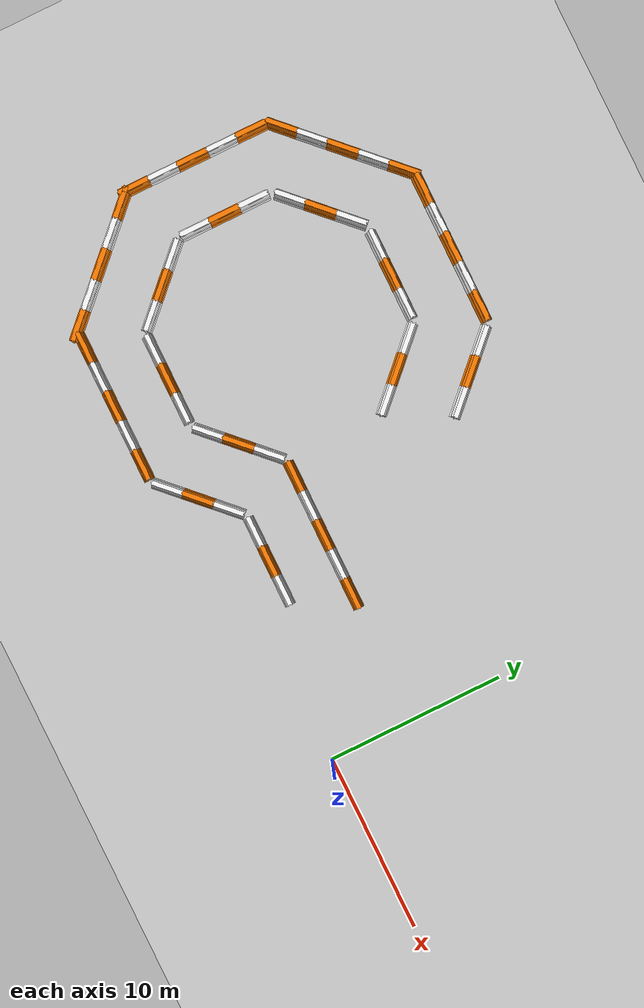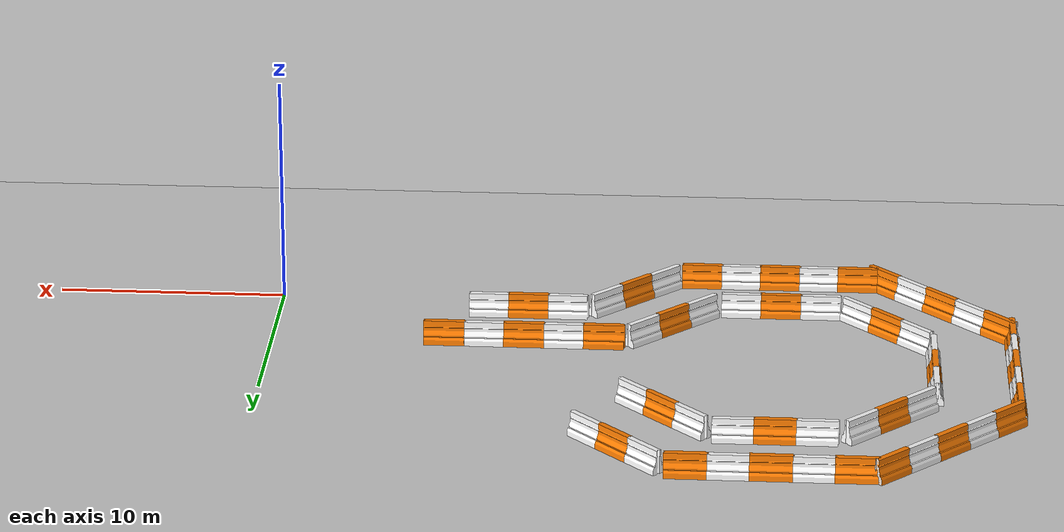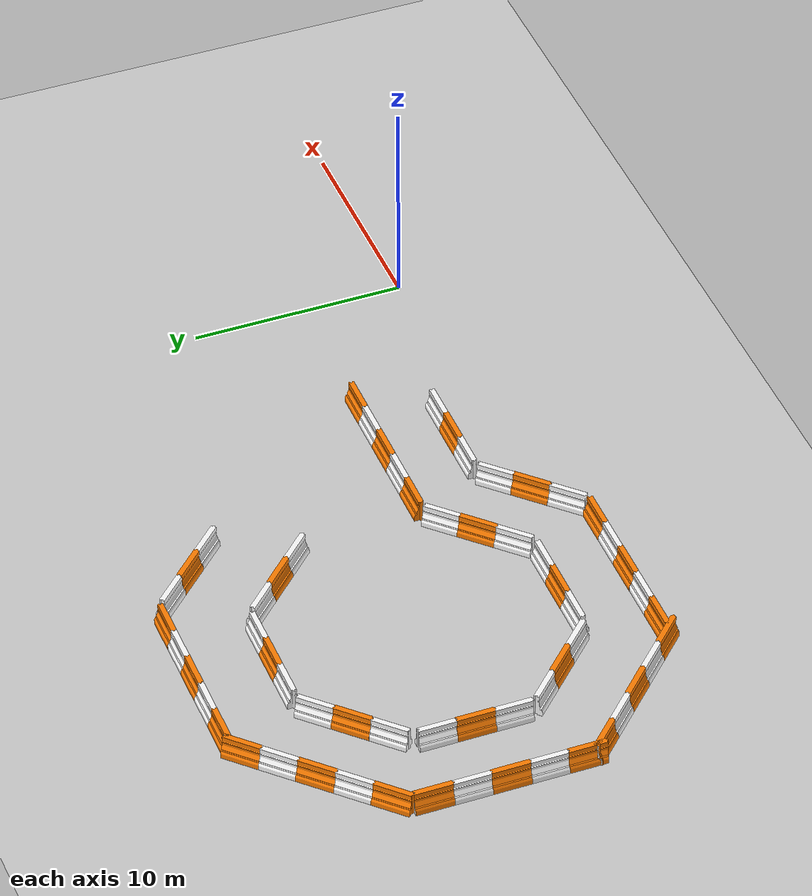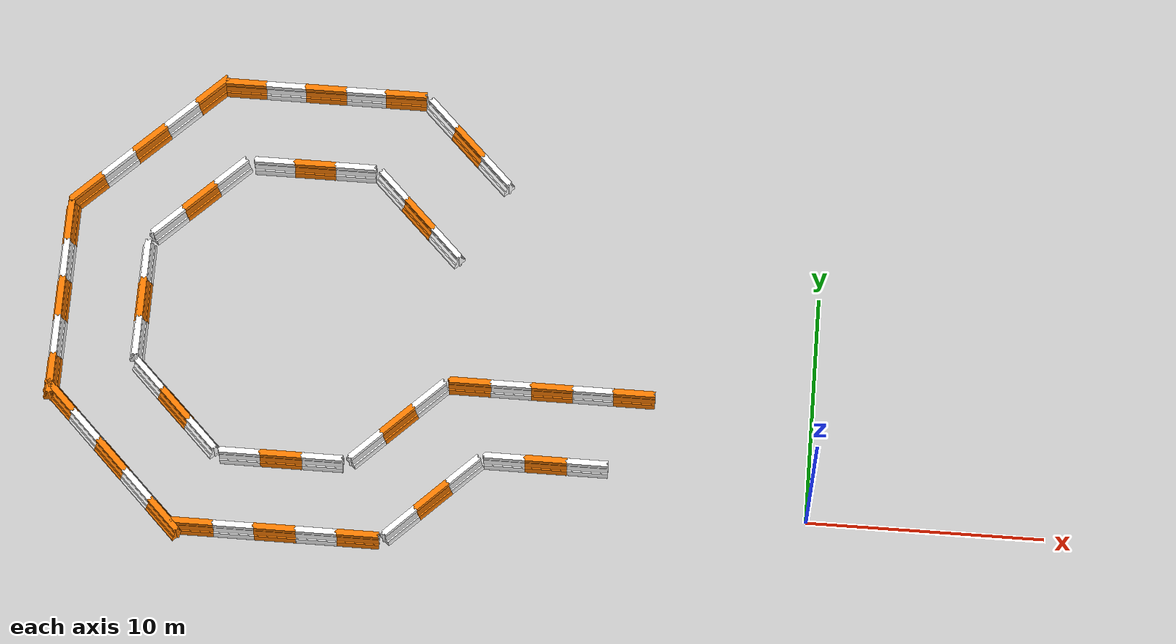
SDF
<sdf version="1.7">
 <world name="default">
  <model name="ground_plane">
   <static>1</static>
   <link name="link">
    <collision name="collision">
     <geometry><plane><normal>0 0 1</normal><size>100 100</size></plane></geometry>
     <surface>
      <contact><collide_bitmask>65535</collide_bitmask></contact>
      <friction><ode><mu>100</mu><mu2>50</mu2></ode></friction>
     </surface>
    </collision>
    <visual name="visual">
     <cast_shadows>0</cast_shadows>
     <geometry><plane><normal>0 0 1</normal><size>100 100</size></plane></geometry>
     <material>
      <script><uri>file://media/materials/scripts/gazebo.material</uri><name>Gazebo/Grey</name></script>
     </material>
    </visual>
   </link>
  </model>
  <model name="barrier_5_clone_0">
   <model name="drc_practice_organge_jersey_barrier">
    <static>1</static>
    <link name="link">
     <visual name="visual">
      <geometry>
       <mesh><uri>model://drc_practice_orange_jersey_barrier/meshes/jersey_barrier.dae</uri></mesh>
      </geometry>
     </visual>
     <collision name="collision">
      <geometry>
       <mesh><uri>model://drc_practice_orange_jersey_barrier/meshes/jersey_barrier.dae</uri></mesh>
      </geometry>
     </collision>
    </link>
    <pose>0.00082 -0.002637 0 0 -0 0</pose>
   </model>
   <model name="drc_practice_organge_jersey_barrier_0">
    <static>1</static>
    <link name="link">
     <visual name="visual">
      <geometry>
       <mesh><uri>model://drc_practice_orange_jersey_barrier/meshes/jersey_barrier.dae</uri></mesh>
      </geometry>
     </visual>
     <collision name="collision">
      <geometry>
       <mesh><uri>model://drc_practice_orange_jersey_barrier/meshes/jersey_barrier.dae</uri></mesh>
      </geometry>
     </collision>
    </link>
    <pose>0.013598 3.47709 0 0 -0 0</pose>
   </model>
   <model name="drc_practice_organge_jersey_barrier_1">
    <static>1</static>
    <link name="link">
     <visual name="visual">
      <geometry>
       <mesh><uri>model://drc_practice_orange_jersey_barrier/meshes/jersey_barrier.dae</uri></mesh>
      </geometry>
     </visual>
     <collision name="collision">
      <geometry>
       <mesh><uri>model://drc_practice_orange_jersey_barrier/meshes/jersey_barrier.dae</uri></mesh>
      </geometry>
     </collision>
    </link>
    <pose>-0.015441 -3.47408 0 0 -0 0</pose>
   </model>
   <model name="drc_practice_white_jersey_barrier">
    <static>1</static>
    <link name="link">
     <visual name="visual">
      <geometry>
       <mesh><uri>model://drc_practice_white_jersey_barrier/meshes/jersey_barrier.dae</uri></mesh>
      </geometry>
     </visual>
     <collision name="collision">
      <geometry>
       <mesh><uri>model://drc_practice_white_jersey_barrier/meshes/jersey_barrier.dae</uri></mesh>
      </geometry>
     </collision>
    </link>
    <pose>0.00537 1.73804 0 0 -0 0</pose>
   </model>
   <model name="drc_practice_white_jersey_barrier_0">
    <static>1</static>
    <link name="link">
     <visual name="visual">
      <geometry>
       <mesh><uri>model://drc_practice_white_jersey_barrier/meshes/jersey_barrier.dae</uri></mesh>
      </geometry>
     </visual>
     <collision name="collision">
      <geometry>
       <mesh><uri>model://drc_practice_white_jersey_barrier/meshes/jersey_barrier.dae</uri></mesh>
      </geometry>
     </collision>
    </link>
    <pose>-0.006189 -1.7354 0 0 -0 0</pose>
   </model>
   <static>0</static>
   <pose>-11.021 4.90886 0 0 0 -1.5708</pose>
  </model>
  <model name="barrier_3_clone_0">
   <model name="drc_practice_organge_jersey_barrier">
    <static>1</static>
    <link name="link">
     <visual name="visual">
      <geometry>
       <mesh><uri>model://drc_practice_orange_jersey_barrier/meshes/jersey_barrier.dae</uri></mesh>
      </geometry>
     </visual>
     <collision name="collision">
      <geometry>
       <mesh><uri>model://drc_practice_orange_jersey_barrier/meshes/jersey_barrier.dae</uri></mesh>
      </geometry>
     </collision>
    </link>
    <pose>-0 -1e-06 0 0 -0 0</pose>
   </model>
   <model name="drc_practice_white_jersey_barrier">
    <static>1</static>
    <link name="link">
     <visual name="visual">
      <geometry>
       <mesh><uri>model://drc_practice_white_jersey_barrier/meshes/jersey_barrier.dae</uri></mesh>
      </geometry>
     </visual>
     <collision name="collision">
      <geometry>
       <mesh><uri>model://drc_practice_white_jersey_barrier/meshes/jersey_barrier.dae</uri></mesh>
      </geometry>
     </collision>
    </link>
    <pose>0.00455 1.74067 0 0 -0 0</pose>
   </model>
   <model name="drc_practice_white_jersey_barrier_0">
    <static>1</static>
    <link name="link">
     <visual name="visual">
      <geometry>
       <mesh><uri>model://drc_practice_white_jersey_barrier/meshes/jersey_barrier.dae</uri></mesh>
      </geometry>
     </visual>
     <collision name="collision">
      <geometry>
       <mesh><uri>model://drc_practice_white_jersey_barrier/meshes/jersey_barrier.dae</uri></mesh>
      </geometry>
     </collision>
    </link>
    <pose>-0.007009 -1.73276 0 0 -0 0</pose>
   </model>
   <static>0</static>
   <pose>-11.0441 1.68041 0 0 0 -1.5708</pose>
  </model>
  <model name="barrier_3_clone_clone_0">
   <model name="drc_practice_organge_jersey_barrier">
    <static>1</static>
    <link name="link">
     <visual name="visual">
      <geometry>
       <mesh><uri>model://drc_practice_orange_jersey_barrier/meshes/jersey_barrier.dae</uri></mesh>
      </geometry>
     </visual>
     <collision name="collision">
      <geometry>
       <mesh><uri>model://drc_practice_orange_jersey_barrier/meshes/jersey_barrier.dae</uri></mesh>
      </geometry>
     </collision>
    </link>
    <pose>-0 -1e-06 0 0 -0 0</pose>
   </model>
   <model name="drc_practice_white_jersey_barrier">
    <static>1</static>
    <link name="link">
     <visual name="visual">
      <geometry>
       <mesh><uri>model://drc_practice_white_jersey_barrier/meshes/jersey_barrier.dae</uri></mesh>
      </geometry>
     </visual>
     <collision name="collision">
      <geometry>
       <mesh><uri>model://drc_practice_white_jersey_barrier/meshes/jersey_barrier.dae</uri></mesh>
      </geometry>
     </collision>
    </link>
    <pose>0.00455 1.74067 0 0 -0 0</pose>
   </model>
   <model name="drc_practice_white_jersey_barrier_0">
    <static>1</static>
    <link name="link">
     <visual name="visual">
      <geometry>
       <mesh><uri>model://drc_practice_white_jersey_barrier/meshes/jersey_barrier.dae</uri></mesh>
      </geometry>
     </visual>
     <collision name="collision">
      <geometry>
       <mesh><uri>model://drc_practice_white_jersey_barrier/meshes/jersey_barrier.dae</uri></mesh>
      </geometry>
     </collision>
    </link>
    <pose>-0.007009 -1.73276 0 0 -0 0</pose>
   </model>
   <static>0</static>
   <pose>-17.4253 3.02044 0 0 0 -0.785402</pose>
  </model>
  <model name="barrier_3_clone_0_clone">
   <model name="drc_practice_organge_jersey_barrier">
    <static>1</static>
    <link name="link">
     <visual name="visual">
      <geometry>
       <mesh><uri>model://drc_practice_orange_jersey_barrier/meshes/jersey_barrier.dae</uri></mesh>
      </geometry>
     </visual>
     <collision name="collision">
      <geometry>
       <mesh><uri>model://drc_practice_orange_jersey_barrier/meshes/jersey_barrier.dae</uri></mesh>
      </geometry>
     </collision>
    </link>
    <pose>-0 -1e-06 0 0 -0 0</pose>
   </model>
   <model name="drc_practice_white_jersey_barrier">
    <static>1</static>
    <link name="link">
     <visual name="visual">
      <geometry>
       <mesh><uri>model://drc_practice_white_jersey_barrier/meshes/jersey_barrier.dae</uri></mesh>
      </geometry>
     </visual>
     <collision name="collision">
      <geometry>
       <mesh><uri>model://drc_practice_white_jersey_barrier/meshes/jersey_barrier.dae</uri></mesh>
      </geometry>
     </collision>
    </link>
    <pose>0.00455 1.74067 0 0 -0 0</pose>
   </model>
   <model name="drc_practice_white_jersey_barrier_0">
    <static>1</static>
    <link name="link">
     <visual name="visual">
      <geometry>
       <mesh><uri>model://drc_practice_white_jersey_barrier/meshes/jersey_barrier.dae</uri></mesh>
      </geometry>
     </visual>
     <collision name="collision">
      <geometry>
       <mesh><uri>model://drc_practice_white_jersey_barrier/meshes/jersey_barrier.dae</uri></mesh>
      </geometry>
     </collision>
    </link>
    <pose>-0.007009 -1.73276 0 0 -0 0</pose>
   </model>
   <static>0</static>
   <pose>-22.1674 1.10998 0 0 0 -1.5708</pose>
  </model>
  <model name="barrier_3_clone_clone_clone_clone_clone_0">
   <model name="drc_practice_organge_jersey_barrier">
    <static>1</static>
    <link name="link">
     <visual name="visual">
      <geometry>
       <mesh><uri>model://drc_practice_orange_jersey_barrier/meshes/jersey_barrier.dae</uri></mesh>
      </geometry>
     </visual>
     <collision name="collision">
      <geometry>
       <mesh><uri>model://drc_practice_orange_jersey_barrier/meshes/jersey_barrier.dae</uri></mesh>
      </geometry>
     </collision>
    </link>
    <pose>-0 -1e-06 0 0 -0 0</pose>
   </model>
   <model name="drc_practice_white_jersey_barrier">
    <static>1</static>
    <link name="link">
     <visual name="visual">
      <geometry>
       <mesh><uri>model://drc_practice_white_jersey_barrier/meshes/jersey_barrier.dae</uri></mesh>
      </geometry>
     </visual>
     <collision name="collision">
      <geometry>
       <mesh><uri>model://drc_practice_white_jersey_barrier/meshes/jersey_barrier.dae</uri></mesh>
      </geometry>
     </collision>
    </link>
    <pose>0.00455 1.74067 0 0 -0 0</pose>
   </model>
   <model name="drc_practice_white_jersey_barrier_0">
    <static>1</static>
    <link name="link">
     <visual name="visual">
      <geometry>
       <mesh><uri>model://drc_practice_white_jersey_barrier/meshes/jersey_barrier.dae</uri></mesh>
      </geometry>
     </visual>
     <collision name="collision">
      <geometry>
       <mesh><uri>model://drc_practice_white_jersey_barrier/meshes/jersey_barrier.dae</uri></mesh>
      </geometry>
     </collision>
    </link>
    <pose>-0.007009 -1.73276 0 0 -0 0</pose>
   </model>
   <static>0</static>
   <pose>-26.8235 3.03964 0 0 -0 0.785394</pose>
  </model>
  <model name="barrier_3_clone_clone_clone_0">
   <model name="drc_practice_organge_jersey_barrier">
    <static>1</static>
    <link name="link">
     <visual name="visual">
      <geometry>
       <mesh><uri>model://drc_practice_orange_jersey_barrier/meshes/jersey_barrier.dae</uri></mesh>
      </geometry>
     </visual>
     <collision name="collision">
      <geometry>
       <mesh><uri>model://drc_practice_orange_jersey_barrier/meshes/jersey_barrier.dae</uri></mesh>
      </geometry>
     </collision>
    </link>
    <pose>-0 -1e-06 0 0 -0 0</pose>
   </model>
   <model name="drc_practice_white_jersey_barrier">
    <static>1</static>
    <link name="link">
     <visual name="visual">
      <geometry>
       <mesh><uri>model://drc_practice_white_jersey_barrier/meshes/jersey_barrier.dae</uri></mesh>
      </geometry>
     </visual>
     <collision name="collision">
      <geometry>
       <mesh><uri>model://drc_practice_white_jersey_barrier/meshes/jersey_barrier.dae</uri></mesh>
      </geometry>
     </collision>
    </link>
    <pose>0.00455 1.74067 0 0 -0 0</pose>
   </model>
   <model name="drc_practice_white_jersey_barrier_0">
    <static>1</static>
    <link name="link">
     <visual name="visual">
      <geometry>
       <mesh><uri>model://drc_practice_white_jersey_barrier/meshes/jersey_barrier.dae</uri></mesh>
      </geometry>
     </visual>
     <collision name="collision">
      <geometry>
       <mesh><uri>model://drc_practice_white_jersey_barrier/meshes/jersey_barrier.dae</uri></mesh>
      </geometry>
     </collision>
    </link>
    <pose>-0.007009 -1.73276 0 0 -0 0</pose>
   </model>
   <static>0</static>
   <pose>-28.7335 7.70882 0 0 0 -4e-06</pose>
  </model>
  <model name="barrier_3_clone_clone_0_clone">
   <model name="drc_practice_organge_jersey_barrier">
    <static>1</static>
    <link name="link">
     <visual name="visual">
      <geometry>
       <mesh><uri>model://drc_practice_orange_jersey_barrier/meshes/jersey_barrier.dae</uri></mesh>
      </geometry>
     </visual>
     <collision name="collision">
      <geometry>
       <mesh><uri>model://drc_practice_orange_jersey_barrier/meshes/jersey_barrier.dae</uri></mesh>
      </geometry>
     </collision>
    </link>
    <pose>-0 -1e-06 0 0 -0 0</pose>
   </model>
   <model name="drc_practice_white_jersey_barrier">
    <static>1</static>
    <link name="link">
     <visual name="visual">
      <geometry>
       <mesh><uri>model://drc_practice_white_jersey_barrier/meshes/jersey_barrier.dae</uri></mesh>
      </geometry>
     </visual>
     <collision name="collision">
      <geometry>
       <mesh><uri>model://drc_practice_white_jersey_barrier/meshes/jersey_barrier.dae</uri></mesh>
      </geometry>
     </collision>
    </link>
    <pose>0.00455 1.74067 0 0 -0 0</pose>
   </model>
   <model name="drc_practice_white_jersey_barrier_0">
    <static>1</static>
    <link name="link">
     <visual name="visual">
      <geometry>
       <mesh><uri>model://drc_practice_white_jersey_barrier/meshes/jersey_barrier.dae</uri></mesh>
      </geometry>
     </visual>
     <collision name="collision">
      <geometry>
       <mesh><uri>model://drc_practice_white_jersey_barrier/meshes/jersey_barrier.dae</uri></mesh>
      </geometry>
     </collision>
    </link>
    <pose>-0.007009 -1.73276 0 0 -0 0</pose>
   </model>
   <static>0</static>
   <pose>-15.7186 -0.229946 0 0 0 -0.785402</pose>
  </model>
  <model name="barrier_5_clone_1">
   <model name="drc_practice_organge_jersey_barrier">
    <static>1</static>
    <link name="link">
     <visual name="visual">
      <geometry>
       <mesh><uri>model://drc_practice_orange_jersey_barrier/meshes/jersey_barrier.dae</uri></mesh>
      </geometry>
     </visual>
     <collision name="collision">
      <geometry>
       <mesh><uri>model://drc_practice_orange_jersey_barrier/meshes/jersey_barrier.dae</uri></mesh>
      </geometry>
     </collision>
    </link>
    <pose>0.00082 -0.002637 0 0 -0 0</pose>
   </model>
   <model name="drc_practice_organge_jersey_barrier_0">
    <static>1</static>
    <link name="link">
     <visual name="visual">
      <geometry>
       <mesh><uri>model://drc_practice_orange_jersey_barrier/meshes/jersey_barrier.dae</uri></mesh>
      </geometry>
     </visual>
     <collision name="collision">
      <geometry>
       <mesh><uri>model://drc_practice_orange_jersey_barrier/meshes/jersey_barrier.dae</uri></mesh>
      </geometry>
     </collision>
    </link>
    <pose>0.013598 3.47709 0 0 -0 0</pose>
   </model>
   <model name="drc_practice_organge_jersey_barrier_1">
    <static>1</static>
    <link name="link">
     <visual name="visual">
      <geometry>
       <mesh><uri>model://drc_practice_orange_jersey_barrier/meshes/jersey_barrier.dae</uri></mesh>
      </geometry>
     </visual>
     <collision name="collision">
      <geometry>
       <mesh><uri>model://drc_practice_orange_jersey_barrier/meshes/jersey_barrier.dae</uri></mesh>
      </geometry>
     </collision>
    </link>
    <pose>-0.015441 -3.47408 0 0 -0 0</pose>
   </model>
   <model name="drc_practice_white_jersey_barrier">
    <static>1</static>
    <link name="link">
     <visual name="visual">
      <geometry>
       <mesh><uri>model://drc_practice_white_jersey_barrier/meshes/jersey_barrier.dae</uri></mesh>
      </geometry>
     </visual>
     <collision name="collision">
      <geometry>
       <mesh><uri>model://drc_practice_white_jersey_barrier/meshes/jersey_barrier.dae</uri></mesh>
      </geometry>
     </collision>
    </link>
    <pose>0.00537 1.73804 0 0 -0 0</pose>
   </model>
   <model name="drc_practice_white_jersey_barrier_0">
    <static>1</static>
    <link name="link">
     <visual name="visual">
      <geometry>
       <mesh><uri>model://drc_practice_white_jersey_barrier/meshes/jersey_barrier.dae</uri></mesh>
      </geometry>
     </visual>
     <collision name="collision">
      <geometry>
       <mesh><uri>model://drc_practice_white_jersey_barrier/meshes/jersey_barrier.dae</uri></mesh>
      </geometry>
     </collision>
    </link>
    <pose>-0.006189 -1.7354 0 0 -0 0</pose>
   </model>
   <static>0</static>
   <pose>-22.1207 -2.13316 0 0 0 -1.5708</pose>
  </model>
  <model name="barrier_5_clone_clone_clone_clone">
   <model name="drc_practice_organge_jersey_barrier">
    <static>1</static>
    <link name="link">
     <visual name="visual">
      <geometry>
       <mesh><uri>model://drc_practice_orange_jersey_barrier/meshes/jersey_barrier.dae</uri></mesh>
      </geometry>
     </visual>
     <collision name="collision">
      <geometry>
       <mesh><uri>model://drc_practice_orange_jersey_barrier/meshes/jersey_barrier.dae</uri></mesh>
      </geometry>
     </collision>
    </link>
    <pose>0.00082 -0.002637 0 0 -0 0</pose>
   </model>
   <model name="drc_practice_organge_jersey_barrier_0">
    <static>1</static>
    <link name="link">
     <visual name="visual">
      <geometry>
       <mesh><uri>model://drc_practice_orange_jersey_barrier/meshes/jersey_barrier.dae</uri></mesh>
      </geometry>
     </visual>
     <collision name="collision">
      <geometry>
       <mesh><uri>model://drc_practice_orange_jersey_barrier/meshes/jersey_barrier.dae</uri></mesh>
      </geometry>
     </collision>
    </link>
    <pose>0.013598 3.47709 0 0 -0 0</pose>
   </model>
   <model name="drc_practice_organge_jersey_barrier_1">
    <static>1</static>
    <link name="link">
     <visual name="visual">
      <geometry>
       <mesh><uri>model://drc_practice_orange_jersey_barrier/meshes/jersey_barrier.dae</uri></mesh>
      </geometry>
     </visual>
     <collision name="collision">
      <geometry>
       <mesh><uri>model://drc_practice_orange_jersey_barrier/meshes/jersey_barrier.dae</uri></mesh>
      </geometry>
     </collision>
    </link>
    <pose>-0.015441 -3.47408 0 0 -0 0</pose>
   </model>
   <model name="drc_practice_white_jersey_barrier">
    <static>1</static>
    <link name="link">
     <visual name="visual">
      <geometry>
       <mesh><uri>model://drc_practice_white_jersey_barrier/meshes/jersey_barrier.dae</uri></mesh>
      </geometry>
     </visual>
     <collision name="collision">
      <geometry>
       <mesh><uri>model://drc_practice_white_jersey_barrier/meshes/jersey_barrier.dae</uri></mesh>
      </geometry>
     </collision>
    </link>
    <pose>0.00537 1.73804 0 0 -0 0</pose>
   </model>
   <model name="drc_practice_white_jersey_barrier_0">
    <static>1</static>
    <link name="link">
     <visual name="visual">
      <geometry>
       <mesh><uri>model://drc_practice_white_jersey_barrier/meshes/jersey_barrier.dae</uri></mesh>
      </geometry>
     </visual>
     <collision name="collision">
      <geometry>
       <mesh><uri>model://drc_practice_white_jersey_barrier/meshes/jersey_barrier.dae</uri></mesh>
      </geometry>
     </collision>
    </link>
    <pose>-0.006189 -1.7354 0 0 -0 0</pose>
   </model>
   <static>0</static>
   <pose>-29.2725 0.581953 0 0 -0 0.785394</pose>
  </model>
  <model name="barrier_5_clone_clone_clone_0">
   <model name="drc_practice_organge_jersey_barrier">
    <static>1</static>
    <link name="link">
     <visual name="visual">
      <geometry>
       <mesh><uri>model://drc_practice_orange_jersey_barrier/meshes/jersey_barrier.dae</uri></mesh>
      </geometry>
     </visual>
     <collision name="collision">
      <geometry>
       <mesh><uri>model://drc_practice_orange_jersey_barrier/meshes/jersey_barrier.dae</uri></mesh>
      </geometry>
     </collision>
    </link>
    <pose>0.00082 -0.002637 0 0 -0 0</pose>
   </model>
   <model name="drc_practice_organge_jersey_barrier_0">
    <static>1</static>
    <link name="link">
     <visual name="visual">
      <geometry>
       <mesh><uri>model://drc_practice_orange_jersey_barrier/meshes/jersey_barrier.dae</uri></mesh>
      </geometry>
     </visual>
     <collision name="collision">
      <geometry>
       <mesh><uri>model://drc_practice_orange_jersey_barrier/meshes/jersey_barrier.dae</uri></mesh>
      </geometry>
     </collision>
    </link>
    <pose>0.013598 3.47709 0 0 -0 0</pose>
   </model>
   <model name="drc_practice_organge_jersey_barrier_1">
    <static>1</static>
    <link name="link">
     <visual name="visual">
      <geometry>
       <mesh><uri>model://drc_practice_orange_jersey_barrier/meshes/jersey_barrier.dae</uri></mesh>
      </geometry>
     </visual>
     <collision name="collision">
      <geometry>
       <mesh><uri>model://drc_practice_orange_jersey_barrier/meshes/jersey_barrier.dae</uri></mesh>
      </geometry>
     </collision>
    </link>
    <pose>-0.015441 -3.47408 0 0 -0 0</pose>
   </model>
   <model name="drc_practice_white_jersey_barrier">
    <static>1</static>
    <link name="link">
     <visual name="visual">
      <geometry>
       <mesh><uri>model://drc_practice_white_jersey_barrier/meshes/jersey_barrier.dae</uri></mesh>
      </geometry>
     </visual>
     <collision name="collision">
      <geometry>
       <mesh><uri>model://drc_practice_white_jersey_barrier/meshes/jersey_barrier.dae</uri></mesh>
      </geometry>
     </collision>
    </link>
    <pose>0.00537 1.73804 0 0 -0 0</pose>
   </model>
   <model name="drc_practice_white_jersey_barrier_0">
    <static>1</static>
    <link name="link">
     <visual name="visual">
      <geometry>
       <mesh><uri>model://drc_practice_white_jersey_barrier/meshes/jersey_barrier.dae</uri></mesh>
      </geometry>
     </visual>
     <collision name="collision">
      <geometry>
       <mesh><uri>model://drc_practice_white_jersey_barrier/meshes/jersey_barrier.dae</uri></mesh>
      </geometry>
     </collision>
    </link>
    <pose>-0.006189 -1.7354 0 0 -0 0</pose>
   </model>
   <static>0</static>
   <pose>-32.1846 7.50182 0 0 0 -4e-06</pose>
  </model>
  <model name="barrier_3_clone_clone_clone_clone_clone_1">
   <model name="drc_practice_organge_jersey_barrier">
    <static>1</static>
    <link name="link">
     <visual name="visual">
      <geometry>
       <mesh><uri>model://drc_practice_orange_jersey_barrier/meshes/jersey_barrier.dae</uri></mesh>
      </geometry>
     </visual>
     <collision name="collision">
      <geometry>
       <mesh><uri>model://drc_practice_orange_jersey_barrier/meshes/jersey_barrier.dae</uri></mesh>
      </geometry>
     </collision>
    </link>
    <pose>-0 -1e-06 0 0 -0 0</pose>
   </model>
   <model name="drc_practice_white_jersey_barrier">
    <static>1</static>
    <link name="link">
     <visual name="visual">
      <geometry>
       <mesh><uri>model://drc_practice_white_jersey_barrier/meshes/jersey_barrier.dae</uri></mesh>
      </geometry>
     </visual>
     <collision name="collision">
      <geometry>
       <mesh><uri>model://drc_practice_white_jersey_barrier/meshes/jersey_barrier.dae</uri></mesh>
      </geometry>
     </collision>
    </link>
    <pose>0.00455 1.74067 0 0 -0 0</pose>
   </model>
   <model name="drc_practice_white_jersey_barrier_0">
    <static>1</static>
    <link name="link">
     <visual name="visual">
      <geometry>
       <mesh><uri>model://drc_practice_white_jersey_barrier/meshes/jersey_barrier.dae</uri></mesh>
      </geometry>
     </visual>
     <collision name="collision">
      <geometry>
       <mesh><uri>model://drc_practice_white_jersey_barrier/meshes/jersey_barrier.dae</uri></mesh>
      </geometry>
     </collision>
    </link>
    <pose>-0.007009 -1.73276 0 0 -0 0</pose>
   </model>
   <static>0</static>
   <pose>-17.2465 12.3514 0 0 -0 0.785394</pose>
  </model>
  <model name="barrier_3_clone_0_clone_clone">
   <model name="drc_practice_organge_jersey_barrier">
    <static>1</static>
    <link name="link">
     <visual name="visual">
      <geometry>
       <mesh><uri>model://drc_practice_orange_jersey_barrier/meshes/jersey_barrier.dae</uri></mesh>
      </geometry>
     </visual>
     <collision name="collision">
      <geometry>
       <mesh><uri>model://drc_practice_orange_jersey_barrier/meshes/jersey_barrier.dae</uri></mesh>
      </geometry>
     </collision>
    </link>
    <pose>-0 -1e-06 0 0 -0 0</pose>
   </model>
   <model name="drc_practice_white_jersey_barrier">
    <static>1</static>
    <link name="link">
     <visual name="visual">
      <geometry>
       <mesh><uri>model://drc_practice_white_jersey_barrier/meshes/jersey_barrier.dae</uri></mesh>
      </geometry>
     </visual>
     <collision name="collision">
      <geometry>
       <mesh><uri>model://drc_practice_white_jersey_barrier/meshes/jersey_barrier.dae</uri></mesh>
      </geometry>
     </collision>
    </link>
    <pose>0.00455 1.74067 0 0 -0 0</pose>
   </model>
   <model name="drc_practice_white_jersey_barrier_0">
    <static>1</static>
    <link name="link">
     <visual name="visual">
      <geometry>
       <mesh><uri>model://drc_practice_white_jersey_barrier/meshes/jersey_barrier.dae</uri></mesh>
      </geometry>
     </visual>
     <collision name="collision">
      <geometry>
       <mesh><uri>model://drc_practice_white_jersey_barrier/meshes/jersey_barrier.dae</uri></mesh>
      </geometry>
     </collision>
    </link>
    <pose>-0.007009 -1.73276 0 0 -0 0</pose>
   </model>
   <static>0</static>
   <pose>-21.9275 14.3107 0 0 0 -1.5708</pose>
  </model>
  <model name="barrier_3_clone_clone_0_clone_0">
   <model name="drc_practice_organge_jersey_barrier">
    <static>1</static>
    <link name="link">
     <visual name="visual">
      <geometry>
       <mesh><uri>model://drc_practice_orange_jersey_barrier/meshes/jersey_barrier.dae</uri></mesh>
      </geometry>
     </visual>
     <collision name="collision">
      <geometry>
       <mesh><uri>model://drc_practice_orange_jersey_barrier/meshes/jersey_barrier.dae</uri></mesh>
      </geometry>
     </collision>
    </link>
    <pose>-0 -1e-06 0 0 -0 0</pose>
   </model>
   <model name="drc_practice_white_jersey_barrier">
    <static>1</static>
    <link name="link">
     <visual name="visual">
      <geometry>
       <mesh><uri>model://drc_practice_white_jersey_barrier/meshes/jersey_barrier.dae</uri></mesh>
      </geometry>
     </visual>
     <collision name="collision">
      <geometry>
       <mesh><uri>model://drc_practice_white_jersey_barrier/meshes/jersey_barrier.dae</uri></mesh>
      </geometry>
     </collision>
    </link>
    <pose>0.00455 1.74067 0 0 -0 0</pose>
   </model>
   <model name="drc_practice_white_jersey_barrier_0">
    <static>1</static>
    <link name="link">
     <visual name="visual">
      <geometry>
       <mesh><uri>model://drc_practice_white_jersey_barrier/meshes/jersey_barrier.dae</uri></mesh>
      </geometry>
     </visual>
     <collision name="collision">
      <geometry>
       <mesh><uri>model://drc_practice_white_jersey_barrier/meshes/jersey_barrier.dae</uri></mesh>
      </geometry>
     </collision>
    </link>
    <pose>-0.007009 -1.73276 0 0 -0 0</pose>
   </model>
   <static>0</static>
   <pose>-26.7418 12.4857 0 0 0 -0.785402</pose>
  </model>
  <model name="barrier_3_clone_clone_clone_clone_clone_1_clone">
   <model name="drc_practice_organge_jersey_barrier">
    <static>1</static>
    <link name="link">
     <visual name="visual">
      <geometry>
       <mesh><uri>model://drc_practice_orange_jersey_barrier/meshes/jersey_barrier.dae</uri></mesh>
      </geometry>
     </visual>
     <collision name="collision">
      <geometry>
       <mesh><uri>model://drc_practice_orange_jersey_barrier/meshes/jersey_barrier.dae</uri></mesh>
      </geometry>
     </collision>
    </link>
    <pose>-0 -1e-06 0 0 -0 0</pose>
   </model>
   <model name="drc_practice_white_jersey_barrier">
    <static>1</static>
    <link name="link">
     <visual name="visual">
      <geometry>
       <mesh><uri>model://drc_practice_white_jersey_barrier/meshes/jersey_barrier.dae</uri></mesh>
      </geometry>
     </visual>
     <collision name="collision">
      <geometry>
       <mesh><uri>model://drc_practice_white_jersey_barrier/meshes/jersey_barrier.dae</uri></mesh>
      </geometry>
     </collision>
    </link>
    <pose>0.00455 1.74067 0 0 -0 0</pose>
   </model>
   <model name="drc_practice_white_jersey_barrier_0">
    <static>1</static>
    <link name="link">
     <visual name="visual">
      <geometry>
       <mesh><uri>model://drc_practice_white_jersey_barrier/meshes/jersey_barrier.dae</uri></mesh>
      </geometry>
     </visual>
     <collision name="collision">
      <geometry>
       <mesh><uri>model://drc_practice_white_jersey_barrier/meshes/jersey_barrier.dae</uri></mesh>
      </geometry>
     </collision>
    </link>
    <pose>-0.007009 -1.73276 0 0 -0 0</pose>
   </model>
   <static>0</static>
   <pose>-15.3881 15.8322 0 0 -0 0.785394</pose>
  </model>
  <model name="barrier_5_clone_0_clone_clone">
   <model name="drc_practice_organge_jersey_barrier">
    <static>1</static>
    <link name="link">
     <visual name="visual">
      <geometry>
       <mesh><uri>model://drc_practice_orange_jersey_barrier/meshes/jersey_barrier.dae</uri></mesh>
      </geometry>
     </visual>
     <collision name="collision">
      <geometry>
       <mesh><uri>model://drc_practice_orange_jersey_barrier/meshes/jersey_barrier.dae</uri></mesh>
      </geometry>
     </collision>
    </link>
    <pose>0.00082 -0.002637 0 0 -0 0</pose>
   </model>
   <model name="drc_practice_organge_jersey_barrier_0">
    <static>1</static>
    <link name="link">
     <visual name="visual">
      <geometry>
       <mesh><uri>model://drc_practice_orange_jersey_barrier/meshes/jersey_barrier.dae</uri></mesh>
      </geometry>
     </visual>
     <collision name="collision">
      <geometry>
       <mesh><uri>model://drc_practice_orange_jersey_barrier/meshes/jersey_barrier.dae</uri></mesh>
      </geometry>
     </collision>
    </link>
    <pose>0.013598 3.47709 0 0 -0 0</pose>
   </model>
   <model name="drc_practice_organge_jersey_barrier_1">
    <static>1</static>
    <link name="link">
     <visual name="visual">
      <geometry>
       <mesh><uri>model://drc_practice_orange_jersey_barrier/meshes/jersey_barrier.dae</uri></mesh>
      </geometry>
     </visual>
     <collision name="collision">
      <geometry>
       <mesh><uri>model://drc_practice_orange_jersey_barrier/meshes/jersey_barrier.dae</uri></mesh>
      </geometry>
     </collision>
    </link>
    <pose>-0.015441 -3.47408 0 0 -0 0</pose>
   </model>
   <model name="drc_practice_white_jersey_barrier">
    <static>1</static>
    <link name="link">
     <visual name="visual">
      <geometry>
       <mesh><uri>model://drc_practice_white_jersey_barrier/meshes/jersey_barrier.dae</uri></mesh>
      </geometry>
     </visual>
     <collision name="collision">
      <geometry>
       <mesh><uri>model://drc_practice_white_jersey_barrier/meshes/jersey_barrier.dae</uri></mesh>
      </geometry>
     </collision>
    </link>
    <pose>0.00537 1.73804 0 0 -0 0</pose>
   </model>
   <model name="drc_practice_white_jersey_barrier_0">
    <static>1</static>
    <link name="link">
     <visual name="visual">
      <geometry>
       <mesh><uri>model://drc_practice_white_jersey_barrier/meshes/jersey_barrier.dae</uri></mesh>
      </geometry>
     </visual>
     <collision name="collision">
      <geometry>
       <mesh><uri>model://drc_practice_white_jersey_barrier/meshes/jersey_barrier.dae</uri></mesh>
      </geometry>
     </collision>
    </link>
    <pose>-0.006189 -1.7354 0 0 -0 0</pose>
   </model>
   <static>0</static>
   <pose>-21.778 17.8392 0 0 0 -1.5708</pose>
  </model>
  <model name="barrier_5_clone_clone_0">
   <model name="drc_practice_organge_jersey_barrier">
    <static>1</static>
    <link name="link">
     <visual name="visual">
      <geometry>
       <mesh><uri>model://drc_practice_orange_jersey_barrier/meshes/jersey_barrier.dae</uri></mesh>
      </geometry>
     </visual>
     <collision name="collision">
      <geometry>
       <mesh><uri>model://drc_practice_orange_jersey_barrier/meshes/jersey_barrier.dae</uri></mesh>
      </geometry>
     </collision>
    </link>
    <pose>0.00082 -0.002637 0 0 -0 0</pose>
   </model>
   <model name="drc_practice_organge_jersey_barrier_0">
    <static>1</static>
    <link name="link">
     <visual name="visual">
      <geometry>
       <mesh><uri>model://drc_practice_orange_jersey_barrier/meshes/jersey_barrier.dae</uri></mesh>
      </geometry>
     </visual>
     <collision name="collision">
      <geometry>
       <mesh><uri>model://drc_practice_orange_jersey_barrier/meshes/jersey_barrier.dae</uri></mesh>
      </geometry>
     </collision>
    </link>
    <pose>0.013598 3.47709 0 0 -0 0</pose>
   </model>
   <model name="drc_practice_organge_jersey_barrier_1">
    <static>1</static>
    <link name="link">
     <visual name="visual">
      <geometry>
       <mesh><uri>model://drc_practice_orange_jersey_barrier/meshes/jersey_barrier.dae</uri></mesh>
      </geometry>
     </visual>
     <collision name="collision">
      <geometry>
       <mesh><uri>model://drc_practice_orange_jersey_barrier/meshes/jersey_barrier.dae</uri></mesh>
      </geometry>
     </collision>
    </link>
    <pose>-0.015441 -3.47408 0 0 -0 0</pose>
   </model>
   <model name="drc_practice_white_jersey_barrier">
    <static>1</static>
    <link name="link">
     <visual name="visual">
      <geometry>
       <mesh><uri>model://drc_practice_white_jersey_barrier/meshes/jersey_barrier.dae</uri></mesh>
      </geometry>
     </visual>
     <collision name="collision">
      <geometry>
       <mesh><uri>model://drc_practice_white_jersey_barrier/meshes/jersey_barrier.dae</uri></mesh>
      </geometry>
     </collision>
    </link>
    <pose>0.00537 1.73804 0 0 -0 0</pose>
   </model>
   <model name="drc_practice_white_jersey_barrier_0">
    <static>1</static>
    <link name="link">
     <visual name="visual">
      <geometry>
       <mesh><uri>model://drc_practice_white_jersey_barrier/meshes/jersey_barrier.dae</uri></mesh>
      </geometry>
     </visual>
     <collision name="collision">
      <geometry>
       <mesh><uri>model://drc_practice_white_jersey_barrier/meshes/jersey_barrier.dae</uri></mesh>
      </geometry>
     </collision>
    </link>
    <pose>-0.006189 -1.7354 0 0 -0 0</pose>
   </model>
   <static>0</static>
   <pose>-29.1346 14.9847 0 0 0 -0.785402</pose>
  </model>
 </world>
</sdf>
